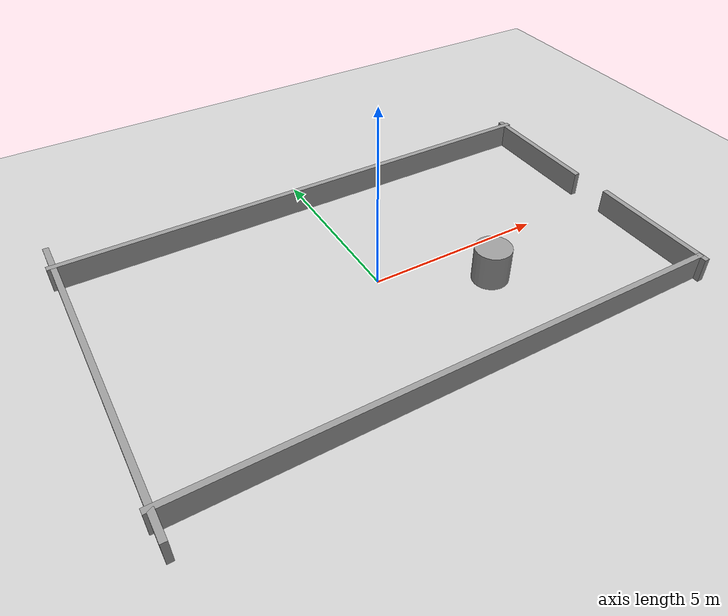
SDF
<sdf version="1.7">
 <world name="default">
  <model name="ground_plane">
   <static>1</static>
   <link name="link">
    <collision name="collision">
     <geometry><plane><normal>0 0 1</normal><size>100 100</size></plane></geometry>
     <surface>
      <contact><collide_bitmask>65535</collide_bitmask></contact>
      <friction><ode><mu>100</mu><mu2>50</mu2></ode></friction>
     </surface>
    </collision>
    <visual name="visual">
     <cast_shadows>0</cast_shadows>
     <geometry><plane><normal>0 0 1</normal><size>100 100</size></plane></geometry>
     <material>
      <script><uri>file://media/materials/scripts/gazebo.material</uri><name>Gazebo/Grey</name></script>
     </material>
    </visual>
   </link>
  </model>
  <light name="sun" type="directional">
   <pose>0 0 10 0 -0 0</pose>
   <diffuse>0.8 0.8 0.8 1</diffuse>
   <specular>0.2 0.2 0.2 1</specular>
   <attenuation>
    <range>1000</range>
    <constant>0.9</constant>
    <linear>0.01</linear>
    <quadratic>0.001</quadratic>
   </attenuation>
   <direction>-0.5 0.1 -0.9</direction>
   <spot><inner_angle>0</inner_angle><outer_angle>0</outer_angle><falloff>0</falloff></spot>
  </light>
  <gravity>0 0 -9.8</gravity>
  <magnetic_field>6e-06 2.3e-05 -4.2e-05</magnetic_field>
  <atmosphere type="adiabatic"/>
  <physics type="ode">
   <max_step_size>0.001</max_step_size>
   <real_time_factor>1</real_time_factor>
   <real_time_update_rate>1000</real_time_update_rate>
  </physics>
  <scene><ambient>0.4 0.4 0.4 1</ambient><background>0.7 0.7 0.7 1</background><shadows>1</shadows></scene>
  <spherical_coordinates>
   <surface_model>EARTH_WGS84</surface_model>
   <latitude_deg>0</latitude_deg>
   <longitude_deg>0</longitude_deg>
   <elevation>0</elevation>
   <heading_deg>0</heading_deg>
  </spherical_coordinates>
  <model name="unit_box">
   <pose>0 4 0 0 -0 0</pose>
   <link name="link">
    <inertial>
     <mass>1</mass>
     <inertia>
      <ixx>0.166667</ixx>
      <ixy>0</ixy>
      <ixz>0</ixz>
      <iyy>0.166667</iyy>
      <iyz>0</iyz>
      <izz>0.166667</izz>
     </inertia>
    </inertial>
    <collision name="collision"><geometry><box><size>14.7846 0.159063 1.36093</size></box></geometry></collision>
    <visual name="visual">
     <geometry><box><size>14.7846 0.159063 1.36093</size></box></geometry>
     <material>
      <script><name>Gazebo/Grey</name><uri>file://media/materials/scripts/gazebo.material</uri></script>
     </material>
    </visual>
    <kinematic>1</kinematic>
   </link>
  </model>
  <model name="unit_box_clone">
   <pose>0 -4 0 0 -0 0</pose>
   <link name="link">
    <inertial>
     <mass>1</mass>
     <inertia>
      <ixx>0.166667</ixx>
      <ixy>0</ixy>
      <ixz>0</ixz>
      <iyy>0.166667</iyy>
      <iyz>0</iyz>
      <izz>0.166667</izz>
     </inertia>
    </inertial>
    <collision name="collision"><geometry><box><size>14.7846 0.159063 1.36093</size></box></geometry></collision>
    <visual name="visual">
     <geometry><box><size>14.7846 0.159063 1.36093</size></box></geometry>
     <material>
      <script><name>Gazebo/Grey</name><uri>file://media/materials/scripts/gazebo.material</uri></script>
     </material>
    </visual>
    <kinematic>1</kinematic>
   </link>
  </model>
  <model name="unit_box_clone_clone">
   <pose>-7.22321 0.037738 0 0 -0 1.57</pose>
   <link name="link">
    <inertial>
     <mass>1</mass>
     <inertia>
      <ixx>0.166667</ixx>
      <ixy>0</ixy>
      <ixz>0</ixz>
      <iyy>0.166667</iyy>
      <iyz>0</iyz>
      <izz>0.166667</izz>
     </inertia>
    </inertial>
    <collision name="collision"><geometry><box><size>9.68558 0.159063 1.36093</size></box></geometry></collision>
    <visual name="visual">
     <geometry><box><size>9.68558 0.159063 1.36093</size></box></geometry>
     <material>
      <script><name>Gazebo/Grey</name><uri>file://media/materials/scripts/gazebo.material</uri></script>
     </material>
    </visual>
    <kinematic>1</kinematic>
   </link>
  </model>
  <model name="unit_box_clone_clone_clone">
   <pose>7.32784 -2.39082 0 0 -0 1.57</pose>
   <link name="link">
    <inertial>
     <mass>1</mass>
     <inertia>
      <ixx>0.166667</ixx>
      <ixy>0</ixy>
      <ixz>0</ixz>
      <iyy>0.166667</iyy>
      <iyz>0</iyz>
      <izz>0.166667</izz>
     </inertia>
    </inertial>
    <collision name="collision"><geometry><box><size>3.69452 0.159063 1.36093</size></box></geometry></collision>
    <visual name="visual">
     <geometry><box><size>3.69452 0.159063 1.36093</size></box></geometry>
     <material>
      <script><name>Gazebo/Grey</name><uri>file://media/materials/scripts/gazebo.material</uri></script>
     </material>
    </visual>
    <kinematic>1</kinematic>
   </link>
  </model>
  <model name="unit_box_clone_clone_clone_clone">
   <pose>7.24424 2.37168 0 0 -0 1.57</pose>
   <link name="link">
    <inertial>
     <mass>1</mass>
     <inertia>
      <ixx>0.166667</ixx>
      <ixy>0</ixy>
      <ixz>0</ixz>
      <iyy>0.166667</iyy>
      <iyz>0</iyz>
      <izz>0.166667</izz>
     </inertia>
    </inertial>
    <collision name="collision"><geometry><box><size>3.69452 0.159063 1.36093</size></box></geometry></collision>
    <visual name="visual">
     <geometry><box><size>3.69452 0.159063 1.36093</size></box></geometry>
     <material>
      <script><name>Gazebo/Grey</name><uri>file://media/materials/scripts/gazebo.material</uri></script>
     </material>
    </visual>
    <kinematic>1</kinematic>
   </link>
  </model>
  <model name="unit_cylinder">
   <pose>2.63487 -1.35308 0.499997 3e-06 4e-06 -0</pose>
   <link name="link">
    <inertial>
     <mass>1</mass>
     <inertia><ixx>0.145833</ixx><ixy>0</ixy><ixz>0</ixz><iyy>0.145833</iyy><iyz>0</iyz><izz>0.125</izz></inertia>
    </inertial>
    <collision name="collision">
     <geometry><cylinder><radius>0.5</radius><length>1</length></cylinder></geometry>
    </collision>
    <visual name="visual">
     <geometry><cylinder><radius>0.5</radius><length>1</length></cylinder></geometry>
     <material>
      <script><name>Gazebo/Grey</name><uri>file://media/materials/scripts/gazebo.material</uri></script>
     </material>
    </visual>
   </link>
  </model>
 </world>
</sdf>
